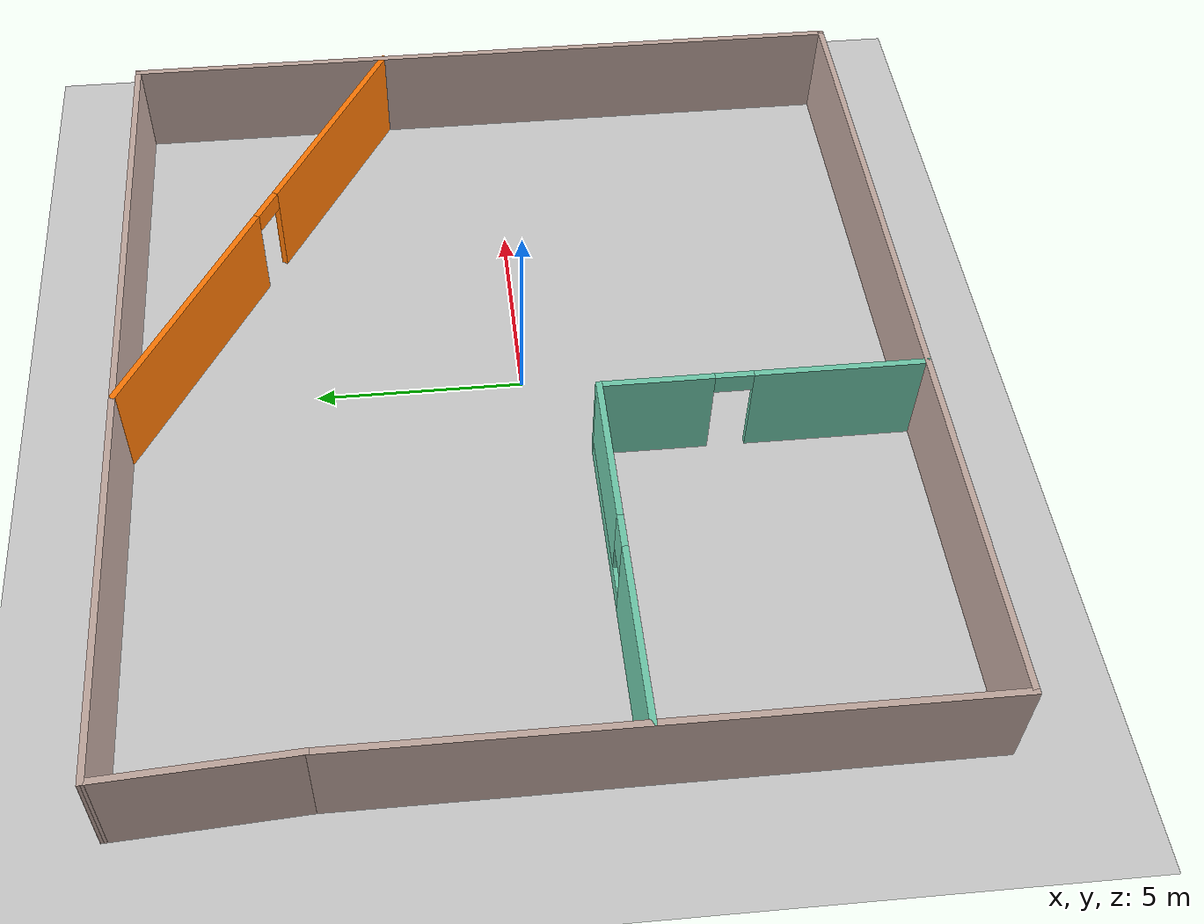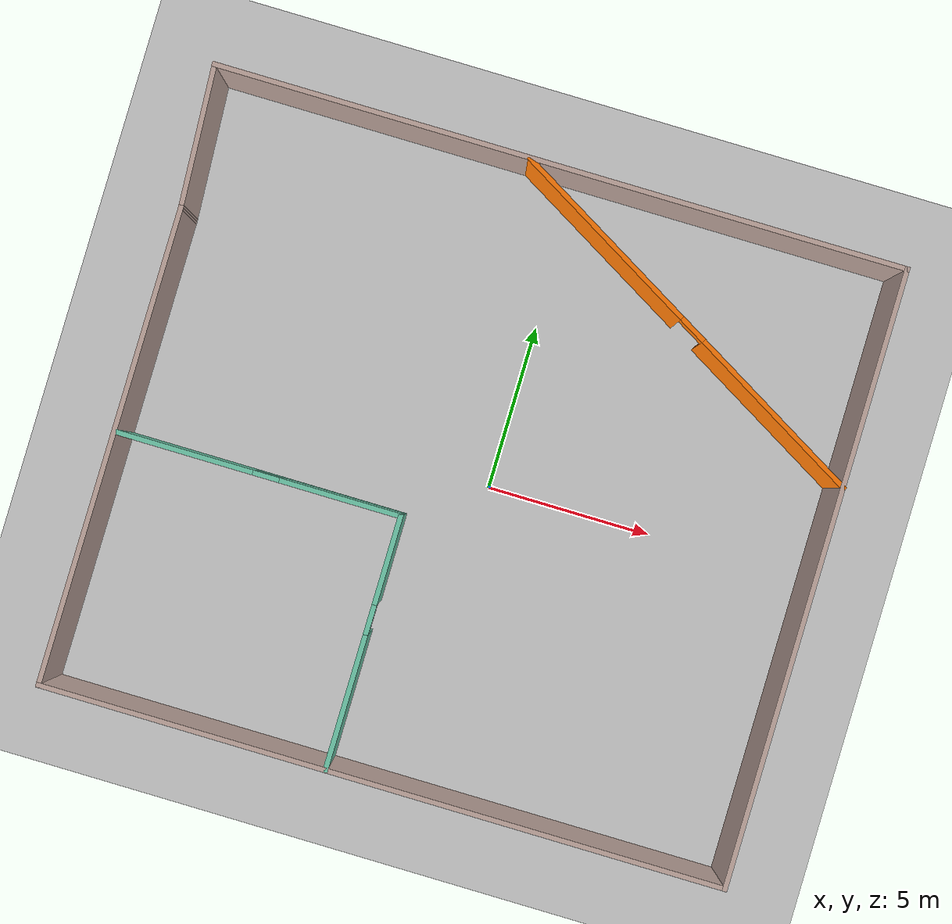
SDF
<sdf version="1.6">
 <world name="default">
  <light name="sun" type="directional">
   <pose>0 0 10 0 -0 0</pose>
   <diffuse>0.8 0.8 0.8 1</diffuse>
   <specular>0.2 0.2 0.2 1</specular>
   <attenuation>
    <range>1000</range>
    <constant>0.9</constant>
    <linear>0.01</linear>
    <quadratic>0.001</quadratic>
   </attenuation>
   <direction>-0.5 0.1 -0.9</direction>
  </light>
  <model name="ground_plane">
   <static>1</static>
   <link name="link">
    <collision name="collision">
     <geometry><plane><normal>0 0 1</normal><size>100 100</size></plane></geometry>
     <surface><friction><ode><mu>100</mu><mu2>50</mu2></ode></friction></surface>
    </collision>
    <visual name="visual">
     <cast_shadows>0</cast_shadows>
     <geometry><plane><normal>0 0 1</normal><size>100 100</size></plane></geometry>
     <material>
      <script><uri>file://media/materials/scripts/gazebo.material</uri><name>Gazebo/Grey</name></script>
     </material>
    </visual>
   </link>
  </model>
  <gravity>0 0 -9.8</gravity>
  <magnetic_field>6e-06 2.3e-05 -4.2e-05</magnetic_field>
  <atmosphere type="adiabatic"/>
  <physics name="default_physics" default="0" type="ode">
   <max_step_size>0.001</max_step_size>
   <real_time_factor>1</real_time_factor>
   <real_time_update_rate>1000</real_time_update_rate>
  </physics>
  <scene><ambient>0.4 0.4 0.4 1</ambient><background>0.7 0.7 0.7 1</background><shadows>1</shadows></scene>
  <spherical_coordinates>
   <surface_model>EARTH_WGS84</surface_model>
   <latitude_deg>0</latitude_deg>
   <longitude_deg>0</longitude_deg>
   <elevation>0</elevation>
   <heading_deg>0</heading_deg>
  </spherical_coordinates>
  <model name="box_room">
   <pose>-0.643659 0.151149 0 0 -0 0</pose>
   <link name="Wall_11">
    <pose>4.74946 5.99665 0 0 0 -0.523599</pose>
    <visual name="Wall_11_Visual_0">
     <pose>-3.40781 0 1.25 0 -0 0</pose>
     <geometry><box><size>6.43438 0.15 2.5</size></box></geometry>
     <material>
      <script><uri>file://media/materials/scripts/gazebo.material</uri><name>Gazebo/Grey</name></script>
      <ambient>0.996078 0.47451 0.0196078 1</ambient>
     </material>
     <meta><layer>0</layer></meta>
    </visual>
    <collision name="Wall_11_Collision_0">
     <geometry><box><size>6.43438 0.15 2.5</size></box></geometry>
     <pose>-3.40781 0 1.25 0 -0 0</pose>
    </collision>
    <visual name="Wall_11_Visual_1">
     <pose>3.66719 0 1.25 0 -0 0</pose>
     <geometry><box><size>5.91562 0.15 2.5</size></box></geometry>
     <material>
      <script><uri>file://media/materials/scripts/gazebo.material</uri><name>Gazebo/Grey</name></script>
      <ambient>0.996078 0.47451 0.0196078 1</ambient>
     </material>
     <meta><layer>0</layer></meta>
    </visual>
    <collision name="Wall_11_Collision_1">
     <geometry><box><size>5.91562 0.15 2.5</size></box></geometry>
     <pose>3.66719 0 1.25 0 -0 0</pose>
    </collision>
    <visual name="Wall_11_Visual_2">
     <pose>0.259377 0 2.25 0 -0 0</pose>
     <geometry><box><size>0.9 0.15 0.5</size></box></geometry>
     <material>
      <script><uri>file://media/materials/scripts/gazebo.material</uri><name>Gazebo/Grey</name></script>
      <ambient>0.996078 0.47451 0.0196078 1</ambient>
     </material>
     <meta><layer>0</layer></meta>
    </visual>
    <collision name="Wall_11_Collision_2">
     <geometry><box><size>0.9 0.15 0.5</size></box></geometry>
     <pose>0.259377 0 2.25 0 -0 0</pose>
    </collision>
   </link>
   <link name="Wall_2">
    <collision name="Wall_2_Collision">
     <geometry><box><size>14.5 0.15 2.5</size></box></geometry>
     <pose>0 0 1.25 0 -0 0</pose>
    </collision>
    <visual name="Wall_2_Visual">
     <pose>0 0 1.25 0 -0 0</pose>
     <geometry><box><size>14.5 0.15 2.5</size></box></geometry>
     <material>
      <script><uri>file://media/materials/scripts/gazebo.material</uri><name>Gazebo/Grey</name></script>
      <ambient>0.760784 0.662745 0.627451 1</ambient>
     </material>
     <meta><layer>0</layer></meta>
    </visual>
    <pose>-10.1951 -2.12714 0 0 0 -1.5708</pose>
   </link>
   <link name="Wall_3">
    <collision name="Wall_3_Collision">
     <geometry><box><size>20.75 0.15 2.5</size></box></geometry>
     <pose>0 0 1.25 0 -0 0</pose>
    </collision>
    <visual name="Wall_3_Visual">
     <pose>0 0 1.25 0 -0 0</pose>
     <geometry><box><size>20.75 0.15 2.5</size></box></geometry>
     <material>
      <script><uri>file://media/materials/scripts/gazebo.material</uri><name>Gazebo/Grey</name></script>
      <ambient>0.760784 0.662745 0.627451 1</ambient>
     </material>
     <meta><layer>0</layer></meta>
    </visual>
    <pose>0.104902 -9.30214 0 0 -0 0</pose>
   </link>
   <link name="Wall_4">
    <collision name="Wall_4_Collision">
     <geometry><box><size>18.75 0.15 2.5</size></box></geometry>
     <pose>0 0 1.25 0 -0 0</pose>
    </collision>
    <visual name="Wall_4_Visual">
     <pose>0 0 1.25 0 -0 0</pose>
     <geometry><box><size>18.75 0.15 2.5</size></box></geometry>
     <material>
      <script><uri>file://media/materials/scripts/gazebo.material</uri><name>Gazebo/Grey</name></script>
      <ambient>0.760784 0.662745 0.627451 1</ambient>
     </material>
     <meta><layer>0</layer></meta>
    </visual>
    <pose>10.4049 -0.002137 0 0 -0 1.5708</pose>
   </link>
   <link name="Wall_5">
    <collision name="Wall_5_Collision">
     <geometry><box><size>21 0.15 2.5</size></box></geometry>
     <pose>0 0 1.25 0 -0 0</pose>
    </collision>
    <visual name="Wall_5_Visual">
     <pose>0 0 1.25 0 -0 0</pose>
     <geometry><box><size>21 0.15 2.5</size></box></geometry>
     <material>
      <script><uri>file://media/materials/scripts/gazebo.material</uri><name>Gazebo/Grey</name></script>
      <ambient>0.760784 0.662745 0.627451 1</ambient>
     </material>
     <meta><layer>0</layer></meta>
    </visual>
    <pose>-0.020098 9.29786 0 0 -0 3.14159</pose>
   </link>
   <link name="Wall_6">
    <collision name="Wall_6_Collision">
     <geometry><box><size>4.40735 0.15 2.5</size></box></geometry>
     <pose>0 0 1.25 0 -0 0</pose>
    </collision>
    <visual name="Wall_6_Visual">
     <pose>0 0 1.25 0 -0 0</pose>
     <geometry><box><size>4.40735 0.15 2.5</size></box></geometry>
     <material>
      <script><uri>file://media/materials/scripts/gazebo.material</uri><name>Gazebo/Grey</name></script>
      <ambient>0.760784 0.662745 0.627451 1</ambient>
     </material>
     <meta><layer>0</layer></meta>
    </visual>
    <pose>-10.3201 7.17286 0 0 0 -1.51204</pose>
   </link>
   <link name="Wall_8">
    <pose>-5.87988 -1.68763 0 0 -0 0</pose>
    <visual name="Wall_8_Visual_0">
     <pose>-2.26318 0 1.25 0 -0 0</pose>
     <geometry><box><size>4.22363 0.15 2.5</size></box></geometry>
     <material>
      <script><uri>file://media/materials/scripts/gazebo.material</uri><name>Gazebo/Grey</name></script>
      <ambient>0.435294 0.796078 0.67451 1</ambient>
     </material>
     <meta><layer>0</layer></meta>
    </visual>
    <collision name="Wall_8_Collision_0">
     <geometry><box><size>4.22363 0.15 2.5</size></box></geometry>
     <pose>-2.26318 0 1.25 0 -0 0</pose>
    </collision>
    <visual name="Wall_8_Visual_1">
     <pose>2.11182 0 0.25 0 -0 0</pose>
     <geometry><box><size>4.52637 0.15 0.5</size></box></geometry>
     <material>
      <script><uri>file://media/materials/scripts/gazebo.material</uri><name>Gazebo/Grey</name></script>
      <ambient>0.435294 0.796078 0.67451 1</ambient>
     </material>
     <meta><layer>0</layer></meta>
    </visual>
    <collision name="Wall_8_Collision_1">
     <geometry><box><size>4.52637 0.15 0.5</size></box></geometry>
     <pose>2.11182 0 0.25 0 -0 0</pose>
    </collision>
    <visual name="Wall_8_Visual_2">
     <pose>2.51182 0 1.5 0 -0 0</pose>
     <geometry><box><size>3.72637 0.15 2</size></box></geometry>
     <material>
      <script><uri>file://media/materials/scripts/gazebo.material</uri><name>Gazebo/Grey</name></script>
      <ambient>0.435294 0.796078 0.67451 1</ambient>
     </material>
     <meta><layer>0</layer></meta>
    </visual>
    <collision name="Wall_8_Collision_2">
     <geometry><box><size>3.72637 0.15 2</size></box></geometry>
     <pose>2.51182 0 1.5 0 -0 0</pose>
    </collision>
    <visual name="Wall_8_Visual_3">
     <pose>0.248634 0 1.9 0 -0 0</pose>
     <geometry><box><size>0.8 0.15 1.2</size></box></geometry>
     <material>
      <script><uri>file://media/materials/scripts/gazebo.material</uri><name>Gazebo/Grey</name></script>
      <ambient>0.435294 0.796078 0.67451 1</ambient>
     </material>
     <meta><layer>0</layer></meta>
    </visual>
    <collision name="Wall_8_Collision_3">
     <geometry><box><size>0.8 0.15 1.2</size></box></geometry>
     <pose>0.248634 0 1.9 0 -0 0</pose>
    </collision>
   </link>
   <link name="Wall_9">
    <pose>-1.57988 -5.48763 0 0 0 -1.5708</pose>
    <visual name="Wall_9_Visual_0">
     <pose>-2.50639 0 1.25 0 -0 0</pose>
     <geometry><box><size>2.73722 0.15 2.5</size></box></geometry>
     <material>
      <script><uri>file://media/materials/scripts/gazebo.material</uri><name>Gazebo/Grey</name></script>
      <ambient>0.435294 0.796078 0.67451 1</ambient>
     </material>
     <meta><layer>0</layer></meta>
    </visual>
    <collision name="Wall_9_Collision_0">
     <geometry><box><size>2.73722 0.15 2.5</size></box></geometry>
     <pose>-2.50639 0 1.25 0 -0 0</pose>
    </collision>
    <visual name="Wall_9_Visual_1">
     <pose>1.81861 0 1.25 0 -0 0</pose>
     <geometry><box><size>4.11278 0.15 2.5</size></box></geometry>
     <material>
      <script><uri>file://media/materials/scripts/gazebo.material</uri><name>Gazebo/Grey</name></script>
      <ambient>0.435294 0.796078 0.67451 1</ambient>
     </material>
     <meta><layer>0</layer></meta>
    </visual>
    <collision name="Wall_9_Collision_1">
     <geometry><box><size>4.11278 0.15 2.5</size></box></geometry>
     <pose>1.81861 0 1.25 0 -0 0</pose>
    </collision>
    <visual name="Wall_9_Visual_2">
     <pose>-0.687777 0 2.25 0 -0 0</pose>
     <geometry><box><size>0.9 0.15 0.5</size></box></geometry>
     <material>
      <script><uri>file://media/materials/scripts/gazebo.material</uri><name>Gazebo/Grey</name></script>
      <ambient>0.435294 0.796078 0.67451 1</ambient>
     </material>
     <meta><layer>0</layer></meta>
    </visual>
    <collision name="Wall_9_Collision_2">
     <geometry><box><size>0.9 0.15 0.5</size></box></geometry>
     <pose>-0.687777 0 2.25 0 -0 0</pose>
    </collision>
   </link>
   <static>1</static>
  </model>
 </world>
</sdf>
